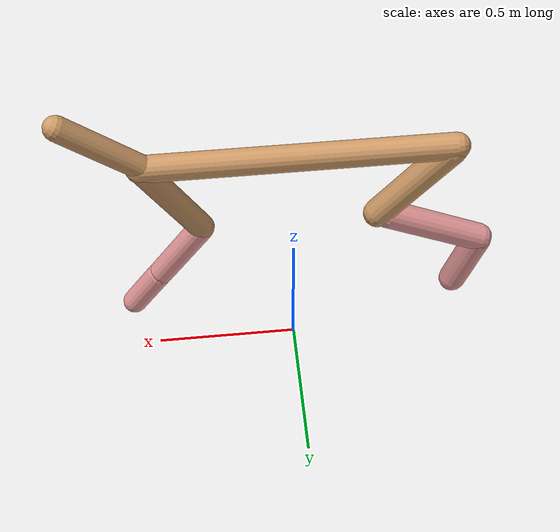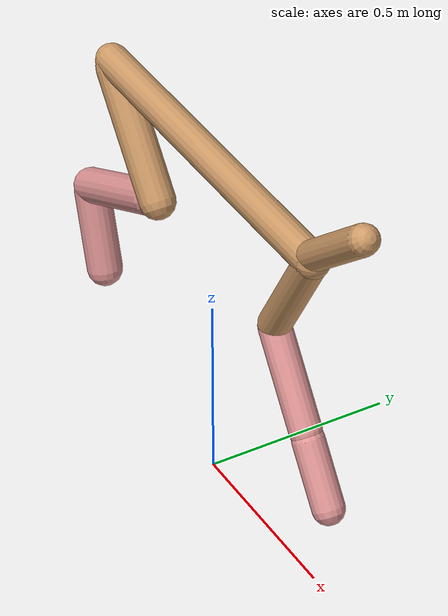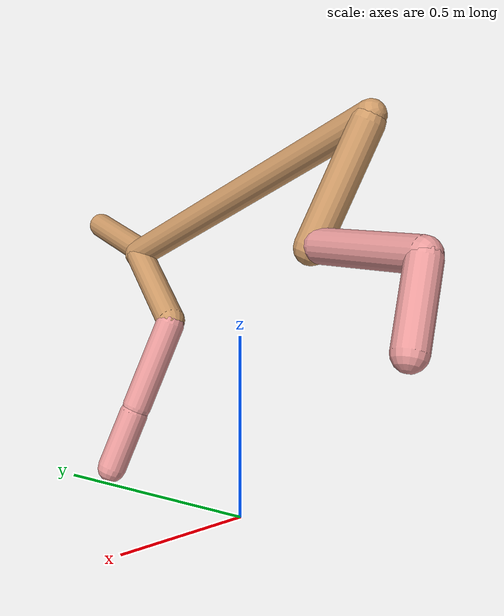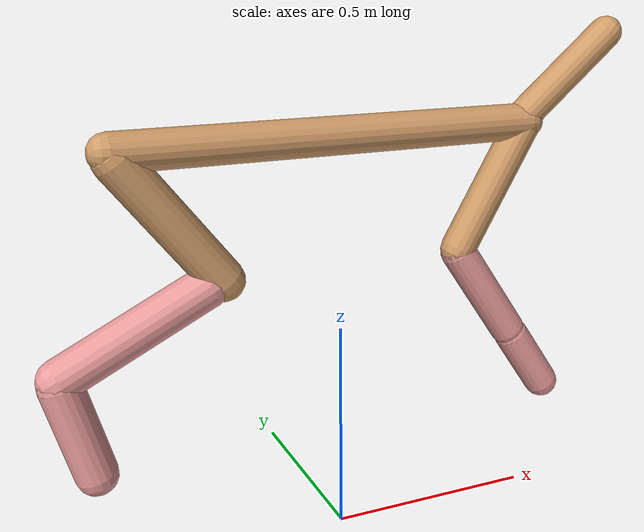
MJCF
<mujoco model="cheetah">
  <compiler angle="radian" coordinate="local" inertiafromgeom="true" settotalmass="14" />
  <default>
    <joint armature=".1" damping=".01" limited="true" solimplimit="0 .8 .03" solreflimit=".02 1" stiffness="8" />
    <geom conaffinity="0" condim="3" contype="1" friction="0.8 .1 .1" rgba="0.8 0.6 .4 1" solimp="0.0 0.8 0.01" solref="0.02 1" />
    <motor ctrllimited="true" ctrlrange="-1 1" />
  </default>
  <size nstack="300000" nuser_geom="1" />
  <option gravity="0 0 -9.81" timestep="0.01" />
  <worldbody>
    <body name="torso" pos="0.0 0.0 0.9483867603539762">
      <joint armature="0" axis="1 0 0" damping="0" limited="false" name="ignorex" pos="0 0 0" stiffness="0" type="slide" />
      <joint armature="0" axis="0 0 1" damping="0" limited="false" name="ignorez" pos="0 0 0" stiffness="0" type="slide" />
      <joint armature="0" axis="0 1 0" damping="0" limited="false" name="ignorey" pos="0 0 0" stiffness="0" type="hinge" />
      <geom fromto="-0.5 0.0 0.0 0.47124903778839655 0.0 0.0" name="torso" size="0.04288464780889233" type="capsule" />
      <geom axisangle="0 1 0 .87" name="head" pos="0.5712490377883965 0.0 0.1" size="0.03883258638595231 0.15" type="capsule" />

      <body name="bthigh" pos="-.5 0 0">
        <joint axis="0 1 0" damping="6" name="bthigh" pos="0 0 0" range="-.52 1.05" stiffness="240" type="hinge" />
        <geom axisangle="0 1 0 -3.8" name="bthigh" pos="0.11860965397699991 0.0 -0.1541925501700999" size="0.04740772160831292 0.17552210190790382" type="capsule" />
        <body name="bshin" pos="0.1972193079539998 0.0 -0.29838510034019977">
          <joint axis="0 1 0" damping="4.5" name="bshin" pos="0 0 0" range="-.785 .785" stiffness="180" type="hinge" />
          <geom axisangle="0 1 0 -2.03" name="bshin" pos="-0.16824117021334445 0.0 -0.08412058510667222" rgba="0.9 0.6 0.6 1" size="0.04740772160831292 0.18157458818059016" type="capsule" />
          <body name="bfoot" pos="-0.3364823404266889 0.0 -0.16824117021334445">
            <joint axis="0 1 0" damping="3" name="bfoot" pos="0 0 0" range="-.4 .785" stiffness="120" type="hinge" />
            <geom axisangle="0 1 0 -.27" name="bfoot" pos="0.03584638315455435 0.0 -0.11590330553305908" rgba="0.9 0.6 0.6 1" size="0.04740772160831292 0.11378674192650318" type="capsule" />
            <inertial mass="10" />
          </body>
        </body>
      </body>
      <body name="fthigh" pos="0.47124903778839655 0.0 0.0">
        <joint axis="0 1 0" damping="4.5" name="fthigh" pos="0 0 0" range="-1.5 0.8" stiffness="180" type="hinge" />
        <geom axisangle="0 1 0 .52" name="fthigh" pos="-0.08673908259779392 0.0 -0.1486955701676467" size="0.04156728806501441 0.16622096677494658" type="capsule" />
        <body name="fshin" pos="-0.17347816519558784 0.0 -0.2973911403352934">
          <joint axis="0 1 0" damping="3" name="fshin" pos="0 0 0" range="-1.2 1.1" stiffness="120" type="hinge" />
          <geom axisangle="0 1 0 -.6" name="fshin" pos="0.08050195185750902 0.0 -0.11146424103347402" rgba="0.9 0.6 0.6 1" size="0.04156728806501441 0.13247686073792733" type="capsule" />
          <body name="ffoot" pos="0.16100390371501805 0.0 -0.22292848206694804">
            <joint axis="0 1 0" damping="1.5" name="ffoot" pos="0 0 0" range="-3.1 -0.3" stiffness="60" type="hinge" />
            <geom axisangle="0 1 0 -.6" name="ffoot" pos="0.0544549947233294 0.0 -0.08470776956962353" rgba="0.9 0.6 0.6 1" size="0.04156728806501441 0.08748471935523504" type="capsule" />
            <inertial mass="10" />
          </body>
        </body>
      </body>
    </body>
  </worldbody>
  <actuator>
    <motor gear="120" joint="bthigh" name="bthigh" />
    <motor gear="90" joint="bshin" name="bshin" />
    <motor gear="60" joint="bfoot" name="bfoot" />
    <motor gear="120" joint="fthigh" name="fthigh" />
    <motor gear="60" joint="fshin" name="fshin" />
    <motor gear="30" joint="ffoot" name="ffoot" />
  </actuator>
</mujoco>
